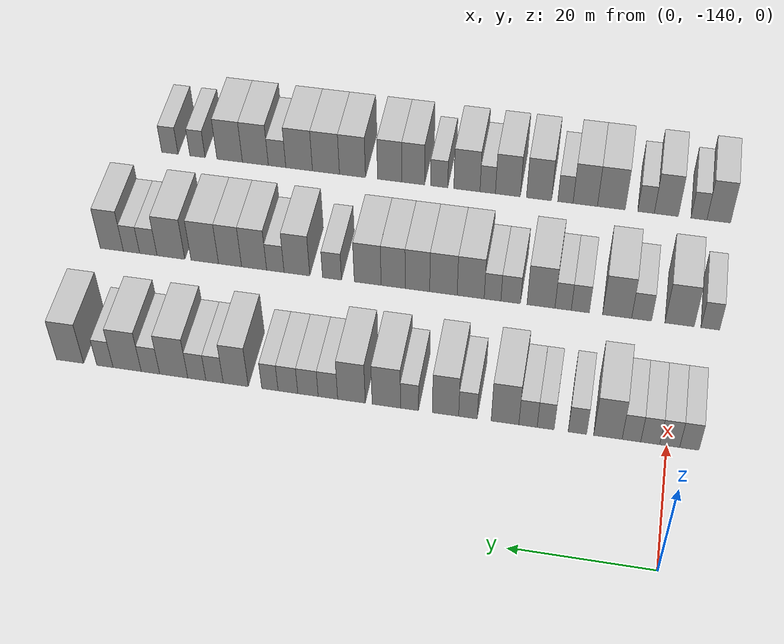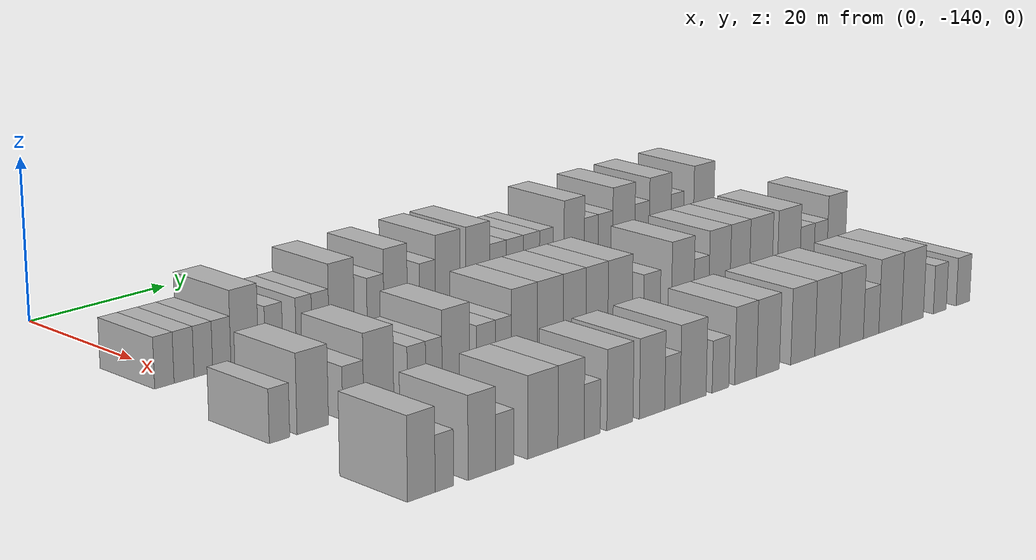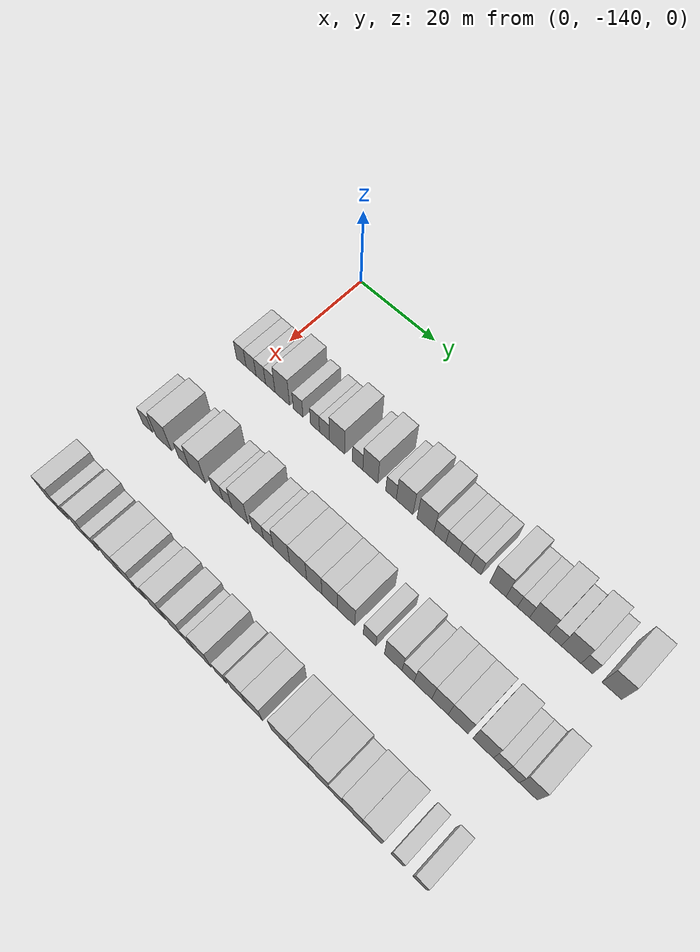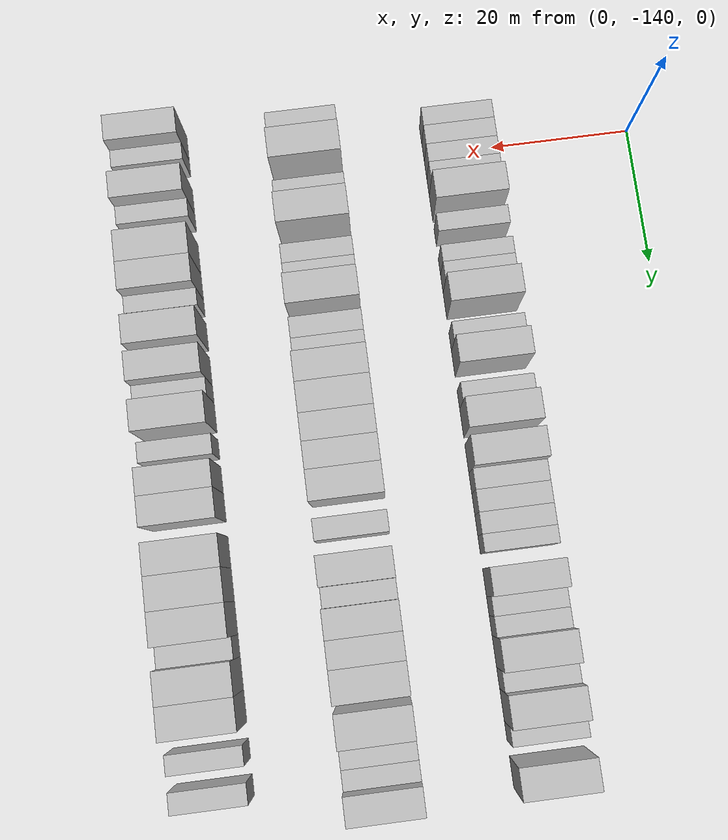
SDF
<sdf version="1.6">
 <world name="default">
  <model name="building_24">
   <static>1</static>
   <pose>25.0000 -143.1176 0 0.000000 0.000000 0.000000</pose>
   <link name="link">
    <pose>0 0 3.00 0 0 0</pose>
    <collision name="collision"><geometry><box><size>10.0000 2.6839 6.0000</size></box></geometry></collision>
    <visual name="visual">
     <cast_shadows>0</cast_shadows>
     <geometry><box><size>10.0000 2.6839 6.0000</size></box></geometry>
     <material>
      <script>
       <uri>model://HANNAS_wall/materials/scripts</uri>
       <uri>model://HANNAS_wall/materials/textures</uri>
       <name>vrc/HANNAS_wall</name>
      </script>
     </material>
    </visual>
   </link>
  </model>
  <model name="building_25">
   <static>1</static>
   <pose>25.0000 -140.3789 0 0.000000 0.000000 0.000000</pose>
   <link name="link">
    <pose>0 0 3.00 0 0 0</pose>
    <collision name="collision"><geometry><box><size>10.0000 2.7935 6.0000</size></box></geometry></collision>
    <visual name="visual">
     <cast_shadows>0</cast_shadows>
     <geometry><box><size>10.0000 2.7935 6.0000</size></box></geometry>
     <material>
      <script>
       <uri>model://HANNAS_wall/materials/scripts</uri>
       <uri>model://HANNAS_wall/materials/textures</uri>
       <name>vrc/HANNAS_wall</name>
      </script>
     </material>
    </visual>
   </link>
  </model>
  <model name="building_26">
   <static>1</static>
   <pose>25.0000 -137.6547 0 0.000000 0.000000 0.000000</pose>
   <link name="link">
    <pose>0 0 3.00 0 0 0</pose>
    <collision name="collision"><geometry><box><size>10.0000 2.6549 6.0000</size></box></geometry></collision>
    <visual name="visual">
     <cast_shadows>0</cast_shadows>
     <geometry><box><size>10.0000 2.6549 6.0000</size></box></geometry>
     <material>
      <script>
       <uri>model://HANNAS_wall/materials/scripts</uri>
       <uri>model://HANNAS_wall/materials/textures</uri>
       <name>vrc/HANNAS_wall</name>
      </script>
     </material>
    </visual>
   </link>
  </model>
  <model name="building_27">
   <static>1</static>
   <pose>25.0000 -135.0209 0 0.000000 0.000000 0.000000</pose>
   <link name="link">
    <pose>0 0 3.00 0 0 0</pose>
    <collision name="collision"><geometry><box><size>10.0000 2.6126 6.0000</size></box></geometry></collision>
    <visual name="visual">
     <cast_shadows>0</cast_shadows>
     <geometry><box><size>10.0000 2.6126 6.0000</size></box></geometry>
     <material>
      <script>
       <uri>model://HANNAS_wall/materials/scripts</uri>
       <uri>model://HANNAS_wall/materials/textures</uri>
       <name>vrc/HANNAS_wall</name>
      </script>
     </material>
    </visual>
   </link>
  </model>
  <model name="building_28">
   <static>1</static>
   <pose>25.0000 -131.7143 0 0.000000 0.000000 0.000000</pose>
   <link name="link">
    <pose>0 0 4.50 0 0 0</pose>
    <collision name="collision"><geometry><box><size>10.0000 4.0006 9.0000</size></box></geometry></collision>
    <visual name="visual">
     <cast_shadows>0</cast_shadows>
     <geometry><box><size>10.0000 4.0006 9.0000</size></box></geometry>
     <material>
      <script>
       <uri>model://HANNAS_wall/materials/scripts</uri>
       <uri>model://HANNAS_wall/materials/textures</uri>
       <name>vrc/HANNAS_wall</name>
      </script>
     </material>
    </visual>
   </link>
  </model>
  <model name="building_29">
   <static>1</static>
   <pose>25.0000 -127.4159 0 0.000000 0.000000 0.000000</pose>
   <link name="link">
    <pose>0 0 3.00 0 0 0</pose>
    <collision name="collision"><geometry><box><size>10.0000 2.5962 6.0000</size></box></geometry></collision>
    <visual name="visual">
     <cast_shadows>0</cast_shadows>
     <geometry><box><size>10.0000 2.5962 6.0000</size></box></geometry>
     <material>
      <script>
       <uri>model://HANNAS_wall/materials/scripts</uri>
       <uri>model://HANNAS_wall/materials/textures</uri>
       <name>vrc/HANNAS_wall</name>
      </script>
     </material>
    </visual>
   </link>
  </model>
  <model name="building_30">
   <static>1</static>
   <pose>25.0000 -122.9150 0 0.000000 0.000000 0.000000</pose>
   <link name="link">
    <pose>0 0 3.00 0 0 0</pose>
    <collision name="collision"><geometry><box><size>10.0000 2.4056 6.0000</size></box></geometry></collision>
    <visual name="visual">
     <cast_shadows>0</cast_shadows>
     <geometry><box><size>10.0000 2.4056 6.0000</size></box></geometry>
     <material>
      <script>
       <uri>model://HANNAS_wall/materials/scripts</uri>
       <uri>model://HANNAS_wall/materials/textures</uri>
       <name>vrc/HANNAS_wall</name>
      </script>
     </material>
    </visual>
   </link>
  </model>
  <model name="building_31">
   <static>1</static>
   <pose>25.0000 -120.4101 0 0.000000 0.000000 0.000000</pose>
   <link name="link">
    <pose>0 0 3.00 0 0 0</pose>
    <collision name="collision"><geometry><box><size>10.0000 2.6041 6.0000</size></box></geometry></collision>
    <visual name="visual">
     <cast_shadows>0</cast_shadows>
     <geometry><box><size>10.0000 2.6041 6.0000</size></box></geometry>
     <material>
      <script>
       <uri>model://HANNAS_wall/materials/scripts</uri>
       <uri>model://HANNAS_wall/materials/textures</uri>
       <name>vrc/HANNAS_wall</name>
      </script>
     </material>
    </visual>
   </link>
  </model>
  <model name="building_32">
   <static>1</static>
   <pose>25.0000 -117.1312 0 0.000000 0.000000 0.000000</pose>
   <link name="link">
    <pose>0 0 4.50 0 0 0</pose>
    <collision name="collision"><geometry><box><size>10.0000 3.9538 9.0000</size></box></geometry></collision>
    <visual name="visual">
     <cast_shadows>0</cast_shadows>
     <geometry><box><size>10.0000 3.9538 9.0000</size></box></geometry>
     <material>
      <script>
       <uri>model://HANNAS_wall/materials/scripts</uri>
       <uri>model://HANNAS_wall/materials/textures</uri>
       <name>vrc/HANNAS_wall</name>
      </script>
     </material>
    </visual>
   </link>
  </model>
  <model name="building_33">
   <static>1</static>
   <pose>25.0000 -111.8211 0 0.000000 0.000000 0.000000</pose>
   <link name="link">
    <pose>0 0 3.00 0 0 0</pose>
    <collision name="collision"><geometry><box><size>10.0000 2.6663 6.0000</size></box></geometry></collision>
    <visual name="visual">
     <cast_shadows>0</cast_shadows>
     <geometry><box><size>10.0000 2.6663 6.0000</size></box></geometry>
     <material>
      <script>
       <uri>model://HANNAS_wall/materials/scripts</uri>
       <uri>model://HANNAS_wall/materials/textures</uri>
       <name>vrc/HANNAS_wall</name>
      </script>
     </material>
    </visual>
   </link>
  </model>
  <model name="building_34">
   <static>1</static>
   <pose>25.0000 -108.5950 0 0.000000 0.000000 0.000000</pose>
   <link name="link">
    <pose>0 0 4.50 0 0 0</pose>
    <collision name="collision"><geometry><box><size>10.0000 3.7857 9.0000</size></box></geometry></collision>
    <visual name="visual">
     <cast_shadows>0</cast_shadows>
     <geometry><box><size>10.0000 3.7857 9.0000</size></box></geometry>
     <material>
      <script>
       <uri>model://HANNAS_wall/materials/scripts</uri>
       <uri>model://HANNAS_wall/materials/textures</uri>
       <name>vrc/HANNAS_wall</name>
      </script>
     </material>
    </visual>
   </link>
  </model>
  <model name="building_35">
   <static>1</static>
   <pose>25.0000 -103.3968 0 0.000000 0.000000 0.000000</pose>
   <link name="link">
    <pose>0 0 3.00 0 0 0</pose>
    <collision name="collision"><geometry><box><size>10.0000 2.6108 6.0000</size></box></geometry></collision>
    <visual name="visual">
     <cast_shadows>0</cast_shadows>
     <geometry><box><size>10.0000 2.6108 6.0000</size></box></geometry>
     <material>
      <script>
       <uri>model://HANNAS_wall/materials/scripts</uri>
       <uri>model://HANNAS_wall/materials/textures</uri>
       <name>vrc/HANNAS_wall</name>
      </script>
     </material>
    </visual>
   </link>
  </model>
  <model name="building_36">
   <static>1</static>
   <pose>25.0000 -100.0337 0 0.000000 0.000000 0.000000</pose>
   <link name="link">
    <pose>0 0 4.50 0 0 0</pose>
    <collision name="collision"><geometry><box><size>10.0000 4.1154 9.0000</size></box></geometry></collision>
    <visual name="visual">
     <cast_shadows>0</cast_shadows>
     <geometry><box><size>10.0000 4.1154 9.0000</size></box></geometry>
     <material>
      <script>
       <uri>model://HANNAS_wall/materials/scripts</uri>
       <uri>model://HANNAS_wall/materials/textures</uri>
       <name>vrc/HANNAS_wall</name>
      </script>
     </material>
    </visual>
   </link>
  </model>
  <model name="building_37">
   <static>1</static>
   <pose>25.0000 -94.9578 0 0.000000 0.000000 0.000000</pose>
   <link name="link">
    <pose>0 0 4.50 0 0 0</pose>
    <collision name="collision"><geometry><box><size>10.0000 4.0363 9.0000</size></box></geometry></collision>
    <visual name="visual">
     <cast_shadows>0</cast_shadows>
     <geometry><box><size>10.0000 4.0363 9.0000</size></box></geometry>
     <material>
      <script>
       <uri>model://HANNAS_wall/materials/scripts</uri>
       <uri>model://HANNAS_wall/materials/textures</uri>
       <name>vrc/HANNAS_wall</name>
      </script>
     </material>
    </visual>
   </link>
  </model>
  <model name="building_38">
   <static>1</static>
   <pose>25.0000 -91.5123 0 0.000000 0.000000 0.000000</pose>
   <link name="link">
    <pose>0 0 3.00 0 0 0</pose>
    <collision name="collision"><geometry><box><size>10.0000 2.8548 6.0000</size></box></geometry></collision>
    <visual name="visual">
     <cast_shadows>0</cast_shadows>
     <geometry><box><size>10.0000 2.8548 6.0000</size></box></geometry>
     <material>
      <script>
       <uri>model://HANNAS_wall/materials/scripts</uri>
       <uri>model://HANNAS_wall/materials/textures</uri>
       <name>vrc/HANNAS_wall</name>
      </script>
     </material>
    </visual>
   </link>
  </model>
  <model name="building_39">
   <static>1</static>
   <pose>25.0000 -88.5862 0 0.000000 0.000000 0.000000</pose>
   <link name="link">
    <pose>0 0 3.00 0 0 0</pose>
    <collision name="collision"><geometry><box><size>10.0000 2.9974 6.0000</size></box></geometry></collision>
    <visual name="visual">
     <cast_shadows>0</cast_shadows>
     <geometry><box><size>10.0000 2.9974 6.0000</size></box></geometry>
     <material>
      <script>
       <uri>model://HANNAS_wall/materials/scripts</uri>
       <uri>model://HANNAS_wall/materials/textures</uri>
       <name>vrc/HANNAS_wall</name>
      </script>
     </material>
    </visual>
   </link>
  </model>
  <model name="building_40">
   <static>1</static>
   <pose>25.0000 -85.6354 0 0.000000 0.000000 0.000000</pose>
   <link name="link">
    <pose>0 0 3.00 0 0 0</pose>
    <collision name="collision"><geometry><box><size>10.0000 2.9042 6.0000</size></box></geometry></collision>
    <visual name="visual">
     <cast_shadows>0</cast_shadows>
     <geometry><box><size>10.0000 2.9042 6.0000</size></box></geometry>
     <material>
      <script>
       <uri>model://HANNAS_wall/materials/scripts</uri>
       <uri>model://HANNAS_wall/materials/textures</uri>
       <name>vrc/HANNAS_wall</name>
      </script>
     </material>
    </visual>
   </link>
  </model>
  <model name="building_41">
   <static>1</static>
   <pose>25.0000 -82.9743 0 0.000000 0.000000 0.000000</pose>
   <link name="link">
    <pose>0 0 3.00 0 0 0</pose>
    <collision name="collision"><geometry><box><size>10.0000 2.4179 6.0000</size></box></geometry></collision>
    <visual name="visual">
     <cast_shadows>0</cast_shadows>
     <geometry><box><size>10.0000 2.4179 6.0000</size></box></geometry>
     <material>
      <script>
       <uri>model://HANNAS_wall/materials/scripts</uri>
       <uri>model://HANNAS_wall/materials/textures</uri>
       <name>vrc/HANNAS_wall</name>
      </script>
     </material>
    </visual>
   </link>
  </model>
  <model name="building_42">
   <static>1</static>
   <pose>25.0000 -77.9022 0 0.000000 0.000000 0.000000</pose>
   <link name="link">
    <pose>0 0 4.50 0 0 0</pose>
    <collision name="collision"><geometry><box><size>10.0000 3.7264 9.0000</size></box></geometry></collision>
    <visual name="visual">
     <cast_shadows>0</cast_shadows>
     <geometry><box><size>10.0000 3.7264 9.0000</size></box></geometry>
     <material>
      <script>
       <uri>model://HANNAS_wall/materials/scripts</uri>
       <uri>model://HANNAS_wall/materials/textures</uri>
       <name>vrc/HANNAS_wall</name>
      </script>
     </material>
    </visual>
   </link>
  </model>
  <model name="building_43">
   <static>1</static>
   <pose>25.0000 -74.7485 0 0.000000 0.000000 0.000000</pose>
   <link name="link">
    <pose>0 0 3.00 0 0 0</pose>
    <collision name="collision"><geometry><box><size>10.0000 2.5810 6.0000</size></box></geometry></collision>
    <visual name="visual">
     <cast_shadows>0</cast_shadows>
     <geometry><box><size>10.0000 2.5810 6.0000</size></box></geometry>
     <material>
      <script>
       <uri>model://HANNAS_wall/materials/scripts</uri>
       <uri>model://HANNAS_wall/materials/textures</uri>
       <name>vrc/HANNAS_wall</name>
      </script>
     </material>
    </visual>
   </link>
  </model>
  <model name="building_44">
   <static>1</static>
   <pose>25.0000 -72.1053 0 0.000000 0.000000 0.000000</pose>
   <link name="link">
    <pose>0 0 3.00 0 0 0</pose>
    <collision name="collision"><geometry><box><size>10.0000 2.7053 6.0000</size></box></geometry></collision>
    <visual name="visual">
     <cast_shadows>0</cast_shadows>
     <geometry><box><size>10.0000 2.7053 6.0000</size></box></geometry>
     <material>
      <script>
       <uri>model://HANNAS_wall/materials/scripts</uri>
       <uri>model://HANNAS_wall/materials/textures</uri>
       <name>vrc/HANNAS_wall</name>
      </script>
     </material>
    </visual>
   </link>
  </model>
  <model name="building_45">
   <static>1</static>
   <pose>25.0000 -68.6433 0 0.000000 0.000000 0.000000</pose>
   <link name="link">
    <pose>0 0 4.50 0 0 0</pose>
    <collision name="collision"><geometry><box><size>10.0000 4.2189 9.0000</size></box></geometry></collision>
    <visual name="visual">
     <cast_shadows>0</cast_shadows>
     <geometry><box><size>10.0000 4.2189 9.0000</size></box></geometry>
     <material>
      <script>
       <uri>model://HANNAS_wall/materials/scripts</uri>
       <uri>model://HANNAS_wall/materials/textures</uri>
       <name>vrc/HANNAS_wall</name>
      </script>
     </material>
    </visual>
   </link>
  </model>
  <model name="building_46">
   <static>1</static>
   <pose>25.0000 -65.1459 0 0.000000 0.000000 0.000000</pose>
   <link name="link">
    <pose>0 0 3.00 0 0 0</pose>
    <collision name="collision"><geometry><box><size>10.0000 2.7759 6.0000</size></box></geometry></collision>
    <visual name="visual">
     <cast_shadows>0</cast_shadows>
     <geometry><box><size>10.0000 2.7759 6.0000</size></box></geometry>
     <material>
      <script>
       <uri>model://HANNAS_wall/materials/scripts</uri>
       <uri>model://HANNAS_wall/materials/textures</uri>
       <name>vrc/HANNAS_wall</name>
      </script>
     </material>
    </visual>
   </link>
  </model>
  <model name="building_47">
   <static>1</static>
   <pose>25.0000 -61.6271 0 0.000000 0.000000 0.000000</pose>
   <link name="link">
    <pose>0 0 4.50 0 0 0</pose>
    <collision name="collision"><geometry><box><size>10.0000 4.2616 9.0000</size></box></geometry></collision>
    <visual name="visual">
     <cast_shadows>0</cast_shadows>
     <geometry><box><size>10.0000 4.2616 9.0000</size></box></geometry>
     <material>
      <script>
       <uri>model://HANNAS_wall/materials/scripts</uri>
       <uri>model://HANNAS_wall/materials/textures</uri>
       <name>vrc/HANNAS_wall</name>
      </script>
     </material>
    </visual>
   </link>
  </model>
  <model name="building_48">
   <static>1</static>
   <pose>25.0000 -58.2616 0 0.000000 0.000000 0.000000</pose>
   <link name="link">
    <pose>0 0 3.00 0 0 0</pose>
    <collision name="collision"><geometry><box><size>10.0000 2.4694 6.0000</size></box></geometry></collision>
    <visual name="visual">
     <cast_shadows>0</cast_shadows>
     <geometry><box><size>10.0000 2.4694 6.0000</size></box></geometry>
     <material>
      <script>
       <uri>model://HANNAS_wall/materials/scripts</uri>
       <uri>model://HANNAS_wall/materials/textures</uri>
       <name>vrc/HANNAS_wall</name>
      </script>
     </material>
    </visual>
   </link>
  </model>
  <model name="building_49">
   <static>1</static>
   <pose>25.0000 -52.9681 0 0.000000 0.000000 0.000000</pose>
   <link name="link">
    <pose>0 0 4.50 0 0 0</pose>
    <collision name="collision"><geometry><box><size>10.0000 4.1175 9.0000</size></box></geometry></collision>
    <visual name="visual">
     <cast_shadows>0</cast_shadows>
     <geometry><box><size>10.0000 4.1175 9.0000</size></box></geometry>
     <material>
      <script>
       <uri>model://HANNAS_wall/materials/scripts</uri>
       <uri>model://HANNAS_wall/materials/textures</uri>
       <name>vrc/HANNAS_wall</name>
      </script>
     </material>
    </visual>
   </link>
  </model>
  <model name="building_147">
   <static>1</static>
   <pose>47.0000 -145.0933 0 0.000000 0.000000 0.000000</pose>
   <link name="link">
    <pose>0 0 3.00 0 0 0</pose>
    <collision name="collision"><geometry><box><size>10.0000 2.7636 6.0000</size></box></geometry></collision>
    <visual name="visual">
     <cast_shadows>0</cast_shadows>
     <geometry><box><size>10.0000 2.7636 6.0000</size></box></geometry>
     <material>
      <script>
       <uri>model://HANNAS_wall/materials/scripts</uri>
       <uri>model://HANNAS_wall/materials/textures</uri>
       <name>vrc/HANNAS_wall</name>
      </script>
     </material>
    </visual>
   </link>
  </model>
  <model name="building_148">
   <static>1</static>
   <pose>47.0000 -140.5355 0 0.000000 0.000000 0.000000</pose>
   <link name="link">
    <pose>0 0 4.50 0 0 0</pose>
    <collision name="collision"><geometry><box><size>10.0000 4.3520 9.0000</size></box></geometry></collision>
    <visual name="visual">
     <cast_shadows>0</cast_shadows>
     <geometry><box><size>10.0000 4.3520 9.0000</size></box></geometry>
     <material>
      <script>
       <uri>model://HANNAS_wall/materials/scripts</uri>
       <uri>model://HANNAS_wall/materials/textures</uri>
       <name>vrc/HANNAS_wall</name>
      </script>
     </material>
    </visual>
   </link>
  </model>
  <model name="building_149">
   <static>1</static>
   <pose>47.0000 -134.8691 0 0.000000 0.000000 0.000000</pose>
   <link name="link">
    <pose>0 0 3.00 0 0 0</pose>
    <collision name="collision"><geometry><box><size>10.0000 2.9808 6.0000</size></box></geometry></collision>
    <visual name="visual">
     <cast_shadows>0</cast_shadows>
     <geometry><box><size>10.0000 2.9808 6.0000</size></box></geometry>
     <material>
      <script>
       <uri>model://HANNAS_wall/materials/scripts</uri>
       <uri>model://HANNAS_wall/materials/textures</uri>
       <name>vrc/HANNAS_wall</name>
      </script>
     </material>
    </visual>
   </link>
  </model>
  <model name="building_150">
   <static>1</static>
   <pose>47.0000 -131.2014 0 0.000000 0.000000 0.000000</pose>
   <link name="link">
    <pose>0 0 4.50 0 0 0</pose>
    <collision name="collision"><geometry><box><size>10.0000 4.3545 9.0000</size></box></geometry></collision>
    <visual name="visual">
     <cast_shadows>0</cast_shadows>
     <geometry><box><size>10.0000 4.3545 9.0000</size></box></geometry>
     <material>
      <script>
       <uri>model://HANNAS_wall/materials/scripts</uri>
       <uri>model://HANNAS_wall/materials/textures</uri>
       <name>vrc/HANNAS_wall</name>
      </script>
     </material>
    </visual>
   </link>
  </model>
  <model name="building_151">
   <static>1</static>
   <pose>47.0000 -125.6621 0 0.000000 0.000000 0.000000</pose>
   <link name="link">
    <pose>0 0 3.00 0 0 0</pose>
    <collision name="collision"><geometry><box><size>10.0000 2.7241 6.0000</size></box></geometry></collision>
    <visual name="visual">
     <cast_shadows>0</cast_shadows>
     <geometry><box><size>10.0000 2.7241 6.0000</size></box></geometry>
     <material>
      <script>
       <uri>model://HANNAS_wall/materials/scripts</uri>
       <uri>model://HANNAS_wall/materials/textures</uri>
       <name>vrc/HANNAS_wall</name>
      </script>
     </material>
    </visual>
   </link>
  </model>
  <model name="building_152">
   <static>1</static>
   <pose>47.0000 -123.0691 0 0.000000 0.000000 0.000000</pose>
   <link name="link">
    <pose>0 0 3.00 0 0 0</pose>
    <collision name="collision"><geometry><box><size>10.0000 2.4619 6.0000</size></box></geometry></collision>
    <visual name="visual">
     <cast_shadows>0</cast_shadows>
     <geometry><box><size>10.0000 2.4619 6.0000</size></box></geometry>
     <material>
      <script>
       <uri>model://HANNAS_wall/materials/scripts</uri>
       <uri>model://HANNAS_wall/materials/textures</uri>
       <name>vrc/HANNAS_wall</name>
      </script>
     </material>
    </visual>
   </link>
  </model>
  <model name="building_153">
   <static>1</static>
   <pose>47.0000 -119.7201 0 0.000000 0.000000 0.000000</pose>
   <link name="link">
    <pose>0 0 4.50 0 0 0</pose>
    <collision name="collision"><geometry><box><size>10.0000 4.2359 9.0000</size></box></geometry></collision>
    <visual name="visual">
     <cast_shadows>0</cast_shadows>
     <geometry><box><size>10.0000 4.2359 9.0000</size></box></geometry>
     <material>
      <script>
       <uri>model://HANNAS_wall/materials/scripts</uri>
       <uri>model://HANNAS_wall/materials/textures</uri>
       <name>vrc/HANNAS_wall</name>
      </script>
     </material>
    </visual>
   </link>
  </model>
  <model name="building_154">
   <static>1</static>
   <pose>47.0000 -115.1126 0 0.000000 0.000000 0.000000</pose>
   <link name="link">
    <pose>0 0 3.00 0 0 0</pose>
    <collision name="collision"><geometry><box><size>10.0000 2.9790 6.0000</size></box></geometry></collision>
    <visual name="visual">
     <cast_shadows>0</cast_shadows>
     <geometry><box><size>10.0000 2.9790 6.0000</size></box></geometry>
     <material>
      <script>
       <uri>model://HANNAS_wall/materials/scripts</uri>
       <uri>model://HANNAS_wall/materials/textures</uri>
       <name>vrc/HANNAS_wall</name>
      </script>
     </material>
    </visual>
   </link>
  </model>
  <model name="building_155">
   <static>1</static>
   <pose>47.0000 -112.3469 0 0.000000 0.000000 0.000000</pose>
   <link name="link">
    <pose>0 0 3.00 0 0 0</pose>
    <collision name="collision"><geometry><box><size>10.0000 2.5525 6.0000</size></box></geometry></collision>
    <visual name="visual">
     <cast_shadows>0</cast_shadows>
     <geometry><box><size>10.0000 2.5525 6.0000</size></box></geometry>
     <material>
      <script>
       <uri>model://HANNAS_wall/materials/scripts</uri>
       <uri>model://HANNAS_wall/materials/textures</uri>
       <name>vrc/HANNAS_wall</name>
      </script>
     </material>
    </visual>
   </link>
  </model>
  <model name="building_156">
   <static>1</static>
   <pose>47.0000 -109.0000 0 0.000000 0.000000 0.000000</pose>
   <link name="link">
    <pose>0 0 4.50 0 0 0</pose>
    <collision name="collision"><geometry><box><size>10.0000 4.1414 9.0000</size></box></geometry></collision>
    <visual name="visual">
     <cast_shadows>0</cast_shadows>
     <geometry><box><size>10.0000 4.1414 9.0000</size></box></geometry>
     <material>
      <script>
       <uri>model://HANNAS_wall/materials/scripts</uri>
       <uri>model://HANNAS_wall/materials/textures</uri>
       <name>vrc/HANNAS_wall</name>
      </script>
     </material>
    </visual>
   </link>
  </model>
  <model name="building_157">
   <static>1</static>
   <pose>47.0000 -104.8183 0 0.000000 0.000000 0.000000</pose>
   <link name="link">
    <pose>0 0 4.50 0 0 0</pose>
    <collision name="collision"><geometry><box><size>10.0000 4.2220 9.0000</size></box></geometry></collision>
    <visual name="visual">
     <cast_shadows>0</cast_shadows>
     <geometry><box><size>10.0000 4.2220 9.0000</size></box></geometry>
     <material>
      <script>
       <uri>model://HANNAS_wall/materials/scripts</uri>
       <uri>model://HANNAS_wall/materials/textures</uri>
       <name>vrc/HANNAS_wall</name>
      </script>
     </material>
    </visual>
   </link>
  </model>
  <model name="building_158">
   <static>1</static>
   <pose>47.0000 -100.8160 0 0.000000 0.000000 0.000000</pose>
   <link name="link">
    <pose>0 0 4.50 0 0 0</pose>
    <collision name="collision"><geometry><box><size>10.0000 3.7826 9.0000</size></box></geometry></collision>
    <visual name="visual">
     <cast_shadows>0</cast_shadows>
     <geometry><box><size>10.0000 3.7826 9.0000</size></box></geometry>
     <material>
      <script>
       <uri>model://HANNAS_wall/materials/scripts</uri>
       <uri>model://HANNAS_wall/materials/textures</uri>
       <name>vrc/HANNAS_wall</name>
      </script>
     </material>
    </visual>
   </link>
  </model>
  <model name="building_159">
   <static>1</static>
   <pose>47.0000 -97.0619 0 0.000000 0.000000 0.000000</pose>
   <link name="link">
    <pose>0 0 4.50 0 0 0</pose>
    <collision name="collision"><geometry><box><size>10.0000 3.7257 9.0000</size></box></geometry></collision>
    <visual name="visual">
     <cast_shadows>0</cast_shadows>
     <geometry><box><size>10.0000 3.7257 9.0000</size></box></geometry>
     <material>
      <script>
       <uri>model://HANNAS_wall/materials/scripts</uri>
       <uri>model://HANNAS_wall/materials/textures</uri>
       <name>vrc/HANNAS_wall</name>
      </script>
     </material>
    </visual>
   </link>
  </model>
  <model name="building_160">
   <static>1</static>
   <pose>47.0000 -93.1124 0 0.000000 0.000000 0.000000</pose>
   <link name="link">
    <pose>0 0 4.50 0 0 0</pose>
    <collision name="collision"><geometry><box><size>10.0000 4.1732 9.0000</size></box></geometry></collision>
    <visual name="visual">
     <cast_shadows>0</cast_shadows>
     <geometry><box><size>10.0000 4.1732 9.0000</size></box></geometry>
     <material>
      <script>
       <uri>model://HANNAS_wall/materials/scripts</uri>
       <uri>model://HANNAS_wall/materials/textures</uri>
       <name>vrc/HANNAS_wall</name>
      </script>
     </material>
    </visual>
   </link>
  </model>
  <model name="building_161">
   <static>1</static>
   <pose>47.0000 -87.5463 0 0.000000 0.000000 0.000000</pose>
   <link name="link">
    <pose>0 0 3.00 0 0 0</pose>
    <collision name="collision"><geometry><box><size>10.0000 2.9592 6.0000</size></box></geometry></collision>
    <visual name="visual">
     <cast_shadows>0</cast_shadows>
     <geometry><box><size>10.0000 2.9592 6.0000</size></box></geometry>
     <material>
      <script>
       <uri>model://HANNAS_wall/materials/scripts</uri>
       <uri>model://HANNAS_wall/materials/textures</uri>
       <name>vrc/HANNAS_wall</name>
      </script>
     </material>
    </visual>
   </link>
  </model>
  <model name="building_162">
   <static>1</static>
   <pose>47.0000 -82.0432 0 0.000000 0.000000 0.000000</pose>
   <link name="link">
    <pose>0 0 4.50 0 0 0</pose>
    <collision name="collision"><geometry><box><size>10.0000 4.0470 9.0000</size></box></geometry></collision>
    <visual name="visual">
     <cast_shadows>0</cast_shadows>
     <geometry><box><size>10.0000 4.0470 9.0000</size></box></geometry>
     <material>
      <script>
       <uri>model://HANNAS_wall/materials/scripts</uri>
       <uri>model://HANNAS_wall/materials/textures</uri>
       <name>vrc/HANNAS_wall</name>
      </script>
     </material>
    </visual>
   </link>
  </model>
  <model name="building_163">
   <static>1</static>
   <pose>47.0000 -78.6441 0 0.000000 0.000000 0.000000</pose>
   <link name="link">
    <pose>0 0 3.00 0 0 0</pose>
    <collision name="collision"><geometry><box><size>10.0000 2.7511 6.0000</size></box></geometry></collision>
    <visual name="visual">
     <cast_shadows>0</cast_shadows>
     <geometry><box><size>10.0000 2.7511 6.0000</size></box></geometry>
     <material>
      <script>
       <uri>model://HANNAS_wall/materials/scripts</uri>
       <uri>model://HANNAS_wall/materials/textures</uri>
       <name>vrc/HANNAS_wall</name>
      </script>
     </material>
    </visual>
   </link>
  </model>
  <model name="building_164">
   <static>1</static>
   <pose>47.0000 -75.2890 0 0.000000 0.000000 0.000000</pose>
   <link name="link">
    <pose>0 0 4.50 0 0 0</pose>
    <collision name="collision"><geometry><box><size>10.0000 3.9590 9.0000</size></box></geometry></collision>
    <visual name="visual">
     <cast_shadows>0</cast_shadows>
     <geometry><box><size>10.0000 3.9590 9.0000</size></box></geometry>
     <material>
      <script>
       <uri>model://HANNAS_wall/materials/scripts</uri>
       <uri>model://HANNAS_wall/materials/textures</uri>
       <name>vrc/HANNAS_wall</name>
      </script>
     </material>
    </visual>
   </link>
  </model>
  <model name="building_165">
   <static>1</static>
   <pose>47.0000 -71.4760 0 0.000000 0.000000 0.000000</pose>
   <link name="link">
    <pose>0 0 4.50 0 0 0</pose>
    <collision name="collision"><geometry><box><size>10.0000 3.6671 9.0000</size></box></geometry></collision>
    <visual name="visual">
     <cast_shadows>0</cast_shadows>
     <geometry><box><size>10.0000 3.6671 9.0000</size></box></geometry>
     <material>
      <script>
       <uri>model://HANNAS_wall/materials/scripts</uri>
       <uri>model://HANNAS_wall/materials/textures</uri>
       <name>vrc/HANNAS_wall</name>
      </script>
     </material>
    </visual>
   </link>
  </model>
  <model name="building_166">
   <static>1</static>
   <pose>47.0000 -67.4536 0 0.000000 0.000000 0.000000</pose>
   <link name="link">
    <pose>0 0 4.50 0 0 0</pose>
    <collision name="collision"><geometry><box><size>10.0000 4.3776 9.0000</size></box></geometry></collision>
    <visual name="visual">
     <cast_shadows>0</cast_shadows>
     <geometry><box><size>10.0000 4.3776 9.0000</size></box></geometry>
     <material>
      <script>
       <uri>model://HANNAS_wall/materials/scripts</uri>
       <uri>model://HANNAS_wall/materials/textures</uri>
       <name>vrc/HANNAS_wall</name>
      </script>
     </material>
    </visual>
   </link>
  </model>
  <model name="building_167">
   <static>1</static>
   <pose>47.0000 -62.0397 0 0.000000 0.000000 0.000000</pose>
   <link name="link">
    <pose>0 0 4.50 0 0 0</pose>
    <collision name="collision"><geometry><box><size>10.0000 4.4501 9.0000</size></box></geometry></collision>
    <visual name="visual">
     <cast_shadows>0</cast_shadows>
     <geometry><box><size>10.0000 4.4501 9.0000</size></box></geometry>
     <material>
      <script>
       <uri>model://HANNAS_wall/materials/scripts</uri>
       <uri>model://HANNAS_wall/materials/textures</uri>
       <name>vrc/HANNAS_wall</name>
      </script>
     </material>
    </visual>
   </link>
  </model>
  <model name="building_168">
   <static>1</static>
   <pose>47.0000 -58.4155 0 0.000000 0.000000 0.000000</pose>
   <link name="link">
    <pose>0 0 3.00 0 0 0</pose>
    <collision name="collision"><geometry><box><size>10.0000 2.7983 6.0000</size></box></geometry></collision>
    <visual name="visual">
     <cast_shadows>0</cast_shadows>
     <geometry><box><size>10.0000 2.7983 6.0000</size></box></geometry>
     <material>
      <script>
       <uri>model://HANNAS_wall/materials/scripts</uri>
       <uri>model://HANNAS_wall/materials/textures</uri>
       <name>vrc/HANNAS_wall</name>
      </script>
     </material>
    </visual>
   </link>
  </model>
  <model name="building_169">
   <static>1</static>
   <pose>47.0000 -55.7048 0 0.000000 0.000000 0.000000</pose>
   <link name="link">
    <pose>0 0 3.00 0 0 0</pose>
    <collision name="collision"><geometry><box><size>10.0000 2.6232 6.0000</size></box></geometry></collision>
    <visual name="visual">
     <cast_shadows>0</cast_shadows>
     <geometry><box><size>10.0000 2.6232 6.0000</size></box></geometry>
     <material>
      <script>
       <uri>model://HANNAS_wall/materials/scripts</uri>
       <uri>model://HANNAS_wall/materials/textures</uri>
       <name>vrc/HANNAS_wall</name>
      </script>
     </material>
    </visual>
   </link>
  </model>
  <model name="building_170">
   <static>1</static>
   <pose>47.0000 -52.5219 0 0.000000 0.000000 0.000000</pose>
   <link name="link">
    <pose>0 0 4.50 0 0 0</pose>
    <collision name="collision"><geometry><box><size>10.0000 3.7428 9.0000</size></box></geometry></collision>
    <visual name="visual">
     <cast_shadows>0</cast_shadows>
     <geometry><box><size>10.0000 3.7428 9.0000</size></box></geometry>
     <material>
      <script>
       <uri>model://HANNAS_wall/materials/scripts</uri>
       <uri>model://HANNAS_wall/materials/textures</uri>
       <name>vrc/HANNAS_wall</name>
      </script>
     </material>
    </visual>
   </link>
  </model>
  <model name="building_267">
   <static>1</static>
   <pose>69.0000 -145.4890 0 0.000000 0.000000 0.000000</pose>
   <link name="link">
    <pose>0 0 4.50 0 0 0</pose>
    <collision name="collision"><geometry><box><size>10.0000 3.7147 9.0000</size></box></geometry></collision>
    <visual name="visual">
     <cast_shadows>0</cast_shadows>
     <geometry><box><size>10.0000 3.7147 9.0000</size></box></geometry>
     <material>
      <script>
       <uri>model://HANNAS_wall/materials/scripts</uri>
       <uri>model://HANNAS_wall/materials/textures</uri>
       <name>vrc/HANNAS_wall</name>
      </script>
     </material>
    </visual>
   </link>
  </model>
  <model name="building_268">
   <static>1</static>
   <pose>69.0000 -142.3761 0 0.000000 0.000000 0.000000</pose>
   <link name="link">
    <pose>0 0 3.00 0 0 0</pose>
    <collision name="collision"><geometry><box><size>10.0000 2.5111 6.0000</size></box></geometry></collision>
    <visual name="visual">
     <cast_shadows>0</cast_shadows>
     <geometry><box><size>10.0000 2.5111 6.0000</size></box></geometry>
     <material>
      <script>
       <uri>model://HANNAS_wall/materials/scripts</uri>
       <uri>model://HANNAS_wall/materials/textures</uri>
       <name>vrc/HANNAS_wall</name>
      </script>
     </material>
    </visual>
   </link>
  </model>
  <model name="building_269">
   <static>1</static>
   <pose>69.0000 -137.2192 0 0.000000 0.000000 0.000000</pose>
   <link name="link">
    <pose>0 0 4.50 0 0 0</pose>
    <collision name="collision"><geometry><box><size>10.0000 3.8026 9.0000</size></box></geometry></collision>
    <visual name="visual">
     <cast_shadows>0</cast_shadows>
     <geometry><box><size>10.0000 3.8026 9.0000</size></box></geometry>
     <material>
      <script>
       <uri>model://HANNAS_wall/materials/scripts</uri>
       <uri>model://HANNAS_wall/materials/textures</uri>
       <name>vrc/HANNAS_wall</name>
      </script>
     </material>
    </visual>
   </link>
  </model>
  <model name="building_270">
   <static>1</static>
   <pose>69.0000 -134.0032 0 0.000000 0.000000 0.000000</pose>
   <link name="link">
    <pose>0 0 3.00 0 0 0</pose>
    <collision name="collision"><geometry><box><size>10.0000 2.6295 6.0000</size></box></geometry></collision>
    <visual name="visual">
     <cast_shadows>0</cast_shadows>
     <geometry><box><size>10.0000 2.6295 6.0000</size></box></geometry>
     <material>
      <script>
       <uri>model://HANNAS_wall/materials/scripts</uri>
       <uri>model://HANNAS_wall/materials/textures</uri>
       <name>vrc/HANNAS_wall</name>
      </script>
     </material>
    </visual>
   </link>
  </model>
  <model name="building_271">
   <static>1</static>
   <pose>69.0000 -128.4733 0 0.000000 0.000000 0.000000</pose>
   <link name="link">
    <pose>0 0 4.50 0 0 0</pose>
    <collision name="collision"><geometry><box><size>10.0000 4.4302 9.0000</size></box></geometry></collision>
    <visual name="visual">
     <cast_shadows>0</cast_shadows>
     <geometry><box><size>10.0000 4.4302 9.0000</size></box></geometry>
     <material>
      <script>
       <uri>model://HANNAS_wall/materials/scripts</uri>
       <uri>model://HANNAS_wall/materials/textures</uri>
       <name>vrc/HANNAS_wall</name>
      </script>
     </material>
    </visual>
   </link>
  </model>
  <model name="building_272">
   <static>1</static>
   <pose>69.0000 -124.3013 0 0.000000 0.000000 0.000000</pose>
   <link name="link">
    <pose>0 0 4.50 0 0 0</pose>
    <collision name="collision"><geometry><box><size>10.0000 3.9138 9.0000</size></box></geometry></collision>
    <visual name="visual">
     <cast_shadows>0</cast_shadows>
     <geometry><box><size>10.0000 3.9138 9.0000</size></box></geometry>
     <material>
      <script>
       <uri>model://HANNAS_wall/materials/scripts</uri>
       <uri>model://HANNAS_wall/materials/textures</uri>
       <name>vrc/HANNAS_wall</name>
      </script>
     </material>
    </visual>
   </link>
  </model>
  <model name="building_273">
   <static>1</static>
   <pose>69.0000 -121.1195 0 0.000000 0.000000 0.000000</pose>
   <link name="link">
    <pose>0 0 3.00 0 0 0</pose>
    <collision name="collision"><geometry><box><size>10.0000 2.4498 6.0000</size></box></geometry></collision>
    <visual name="visual">
     <cast_shadows>0</cast_shadows>
     <geometry><box><size>10.0000 2.4498 6.0000</size></box></geometry>
     <material>
      <script>
       <uri>model://HANNAS_wall/materials/scripts</uri>
       <uri>model://HANNAS_wall/materials/textures</uri>
       <name>vrc/HANNAS_wall</name>
      </script>
     </material>
    </visual>
   </link>
  </model>
  <model name="building_274">
   <static>1</static>
   <pose>69.0000 -116.8705 0 0.000000 0.000000 0.000000</pose>
   <link name="link">
    <pose>0 0 4.50 0 0 0</pose>
    <collision name="collision"><geometry><box><size>10.0000 4.0482 9.0000</size></box></geometry></collision>
    <visual name="visual">
     <cast_shadows>0</cast_shadows>
     <geometry><box><size>10.0000 4.0482 9.0000</size></box></geometry>
     <material>
      <script>
       <uri>model://HANNAS_wall/materials/scripts</uri>
       <uri>model://HANNAS_wall/materials/textures</uri>
       <name>vrc/HANNAS_wall</name>
      </script>
     </material>
    </visual>
   </link>
  </model>
  <model name="building_275">
   <static>1</static>
   <pose>69.0000 -111.8294 0 0.000000 0.000000 0.000000</pose>
   <link name="link">
    <pose>0 0 4.50 0 0 0</pose>
    <collision name="collision"><geometry><box><size>10.0000 4.0340 9.0000</size></box></geometry></collision>
    <visual name="visual">
     <cast_shadows>0</cast_shadows>
     <geometry><box><size>10.0000 4.0340 9.0000</size></box></geometry>
     <material>
      <script>
       <uri>model://HANNAS_wall/materials/scripts</uri>
       <uri>model://HANNAS_wall/materials/textures</uri>
       <name>vrc/HANNAS_wall</name>
      </script>
     </material>
    </visual>
   </link>
  </model>
  <model name="building_276">
   <static>1</static>
   <pose>69.0000 -108.5609 0 0.000000 0.000000 0.000000</pose>
   <link name="link">
    <pose>0 0 3.00 0 0 0</pose>
    <collision name="collision"><geometry><box><size>10.0000 2.5029 6.0000</size></box></geometry></collision>
    <visual name="visual">
     <cast_shadows>0</cast_shadows>
     <geometry><box><size>10.0000 2.5029 6.0000</size></box></geometry>
     <material>
      <script>
       <uri>model://HANNAS_wall/materials/scripts</uri>
       <uri>model://HANNAS_wall/materials/textures</uri>
       <name>vrc/HANNAS_wall</name>
      </script>
     </material>
    </visual>
   </link>
  </model>
  <model name="building_277">
   <static>1</static>
   <pose>69.0000 -105.1804 0 0.000000 0.000000 0.000000</pose>
   <link name="link">
    <pose>0 0 4.50 0 0 0</pose>
    <collision name="collision"><geometry><box><size>10.0000 4.2582 9.0000</size></box></geometry></collision>
    <visual name="visual">
     <cast_shadows>0</cast_shadows>
     <geometry><box><size>10.0000 4.2582 9.0000</size></box></geometry>
     <material>
      <script>
       <uri>model://HANNAS_wall/materials/scripts</uri>
       <uri>model://HANNAS_wall/materials/textures</uri>
       <name>vrc/HANNAS_wall</name>
      </script>
     </material>
    </visual>
   </link>
  </model>
  <model name="building_278">
   <static>1</static>
   <pose>69.0000 -100.6546 0 0.000000 0.000000 0.000000</pose>
   <link name="link">
    <pose>0 0 3.00 0 0 0</pose>
    <collision name="collision"><geometry><box><size>10.0000 2.7933 6.0000</size></box></geometry></collision>
    <visual name="visual">
     <cast_shadows>0</cast_shadows>
     <geometry><box><size>10.0000 2.7933 6.0000</size></box></geometry>
     <material>
      <script>
       <uri>model://HANNAS_wall/materials/scripts</uri>
       <uri>model://HANNAS_wall/materials/textures</uri>
       <name>vrc/HANNAS_wall</name>
      </script>
     </material>
    </visual>
   </link>
  </model>
  <model name="building_279">
   <static>1</static>
   <pose>69.0000 -96.3974 0 0.000000 0.000000 0.000000</pose>
   <link name="link">
    <pose>0 0 4.50 0 0 0</pose>
    <collision name="collision"><geometry><box><size>10.0000 3.7210 9.0000</size></box></geometry></collision>
    <visual name="visual">
     <cast_shadows>0</cast_shadows>
     <geometry><box><size>10.0000 3.7210 9.0000</size></box></geometry>
     <material>
      <script>
       <uri>model://HANNAS_wall/materials/scripts</uri>
       <uri>model://HANNAS_wall/materials/textures</uri>
       <name>vrc/HANNAS_wall</name>
      </script>
     </material>
    </visual>
   </link>
  </model>
  <model name="building_280">
   <static>1</static>
   <pose>69.0000 -92.5343 0 0.000000 0.000000 0.000000</pose>
   <link name="link">
    <pose>0 0 4.50 0 0 0</pose>
    <collision name="collision"><geometry><box><size>10.0000 4.0054 9.0000</size></box></geometry></collision>
    <visual name="visual">
     <cast_shadows>0</cast_shadows>
     <geometry><box><size>10.0000 4.0054 9.0000</size></box></geometry>
     <material>
      <script>
       <uri>model://HANNAS_wall/materials/scripts</uri>
       <uri>model://HANNAS_wall/materials/textures</uri>
       <name>vrc/HANNAS_wall</name>
      </script>
     </material>
    </visual>
   </link>
  </model>
  <model name="building_281">
   <static>1</static>
   <pose>69.0000 -86.3725 0 0.000000 0.000000 0.000000</pose>
   <link name="link">
    <pose>0 0 4.50 0 0 0</pose>
    <collision name="collision"><geometry><box><size>10.0000 4.3181 9.0000</size></box></geometry></collision>
    <visual name="visual">
     <cast_shadows>0</cast_shadows>
     <geometry><box><size>10.0000 4.3181 9.0000</size></box></geometry>
     <material>
      <script>
       <uri>model://HANNAS_wall/materials/scripts</uri>
       <uri>model://HANNAS_wall/materials/textures</uri>
       <name>vrc/HANNAS_wall</name>
      </script>
     </material>
    </visual>
   </link>
  </model>
  <model name="building_282">
   <static>1</static>
   <pose>69.0000 -81.9660 0 0.000000 0.000000 0.000000</pose>
   <link name="link">
    <pose>0 0 4.50 0 0 0</pose>
    <collision name="collision"><geometry><box><size>10.0000 4.4949 9.0000</size></box></geometry></collision>
    <visual name="visual">
     <cast_shadows>0</cast_shadows>
     <geometry><box><size>10.0000 4.4949 9.0000</size></box></geometry>
     <material>
      <script>
       <uri>model://HANNAS_wall/materials/scripts</uri>
       <uri>model://HANNAS_wall/materials/textures</uri>
       <name>vrc/HANNAS_wall</name>
      </script>
     </material>
    </visual>
   </link>
  </model>
  <model name="building_283">
   <static>1</static>
   <pose>69.0000 -77.4912 0 0.000000 0.000000 0.000000</pose>
   <link name="link">
    <pose>0 0 4.50 0 0 0</pose>
    <collision name="collision"><geometry><box><size>10.0000 4.4547 9.0000</size></box></geometry></collision>
    <visual name="visual">
     <cast_shadows>0</cast_shadows>
     <geometry><box><size>10.0000 4.4547 9.0000</size></box></geometry>
     <material>
      <script>
       <uri>model://HANNAS_wall/materials/scripts</uri>
       <uri>model://HANNAS_wall/materials/textures</uri>
       <name>vrc/HANNAS_wall</name>
      </script>
     </material>
    </visual>
   </link>
  </model>
  <model name="building_284">
   <static>1</static>
   <pose>69.0000 -73.8028 0 0.000000 0.000000 0.000000</pose>
   <link name="link">
    <pose>0 0 3.00 0 0 0</pose>
    <collision name="collision"><geometry><box><size>10.0000 2.9223 6.0000</size></box></geometry></collision>
    <visual name="visual">
     <cast_shadows>0</cast_shadows>
     <geometry><box><size>10.0000 2.9223 6.0000</size></box></geometry>
     <material>
      <script>
       <uri>model://HANNAS_wall/materials/scripts</uri>
       <uri>model://HANNAS_wall/materials/textures</uri>
       <name>vrc/HANNAS_wall</name>
      </script>
     </material>
    </visual>
   </link>
  </model>
  <model name="building_285">
   <static>1</static>
   <pose>69.0000 -70.1578 0 0.000000 0.000000 0.000000</pose>
   <link name="link">
    <pose>0 0 4.50 0 0 0</pose>
    <collision name="collision"><geometry><box><size>10.0000 4.3678 9.0000</size></box></geometry></collision>
    <visual name="visual">
     <cast_shadows>0</cast_shadows>
     <geometry><box><size>10.0000 4.3678 9.0000</size></box></geometry>
     <material>
      <script>
       <uri>model://HANNAS_wall/materials/scripts</uri>
       <uri>model://HANNAS_wall/materials/textures</uri>
       <name>vrc/HANNAS_wall</name>
      </script>
     </material>
    </visual>
   </link>
  </model>
  <model name="building_286">
   <static>1</static>
   <pose>69.0000 -65.8230 0 0.000000 0.000000 0.000000</pose>
   <link name="link">
    <pose>0 0 4.50 0 0 0</pose>
    <collision name="collision"><geometry><box><size>10.0000 4.3017 9.0000</size></box></geometry></collision>
    <visual name="visual">
     <cast_shadows>0</cast_shadows>
     <geometry><box><size>10.0000 4.3017 9.0000</size></box></geometry>
     <material>
      <script>
       <uri>model://HANNAS_wall/materials/scripts</uri>
       <uri>model://HANNAS_wall/materials/textures</uri>
       <name>vrc/HANNAS_wall</name>
      </script>
     </material>
    </visual>
   </link>
  </model>
  <model name="building_287">
   <static>1</static>
   <pose>69.0000 -60.3759 0 0.000000 0.000000 0.000000</pose>
   <link name="link">
    <pose>0 0 3.00 0 0 0</pose>
    <collision name="collision"><geometry><box><size>10.0000 2.5926 6.0000</size></box></geometry></collision>
    <visual name="visual">
     <cast_shadows>0</cast_shadows>
     <geometry><box><size>10.0000 2.5926 6.0000</size></box></geometry>
     <material>
      <script>
       <uri>model://HANNAS_wall/materials/scripts</uri>
       <uri>model://HANNAS_wall/materials/textures</uri>
       <name>vrc/HANNAS_wall</name>
      </script>
     </material>
    </visual>
   </link>
  </model>
  <model name="building_288">
   <static>1</static>
   <pose>69.0000 -55.6912 0 0.000000 0.000000 0.000000</pose>
   <link name="link">
    <pose>0 0 3.00 0 0 0</pose>
    <collision name="collision"><geometry><box><size>10.0000 2.7768 6.0000</size></box></geometry></collision>
    <visual name="visual">
     <cast_shadows>0</cast_shadows>
     <geometry><box><size>10.0000 2.7768 6.0000</size></box></geometry>
     <material>
      <script>
       <uri>model://HANNAS_wall/materials/scripts</uri>
       <uri>model://HANNAS_wall/materials/textures</uri>
       <name>vrc/HANNAS_wall</name>
      </script>
     </material>
    </visual>
   </link>
  </model>
 </world>
</sdf>
